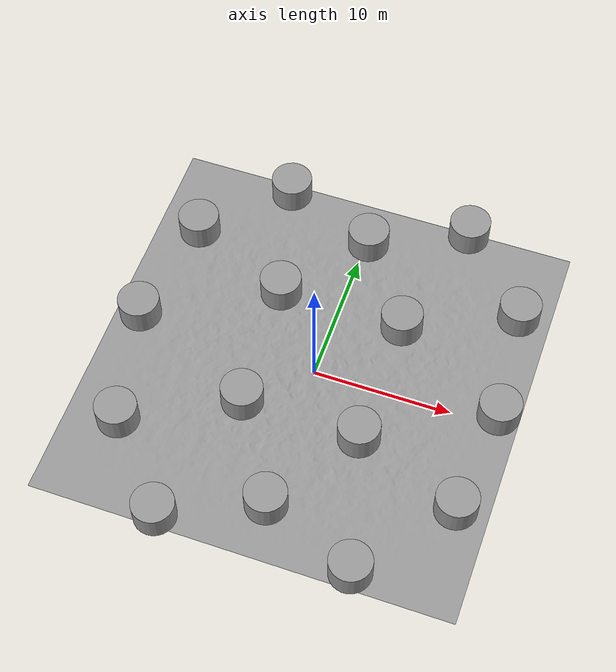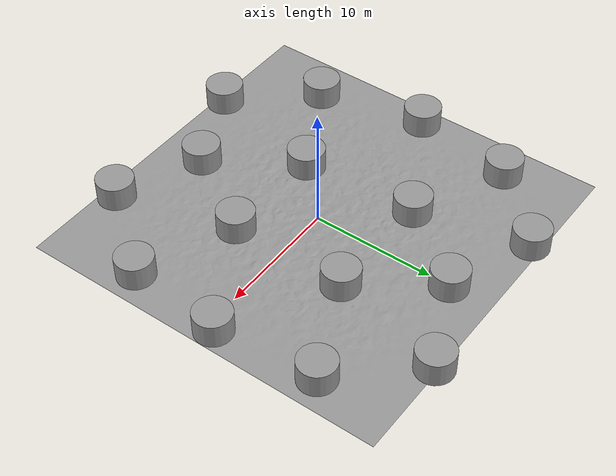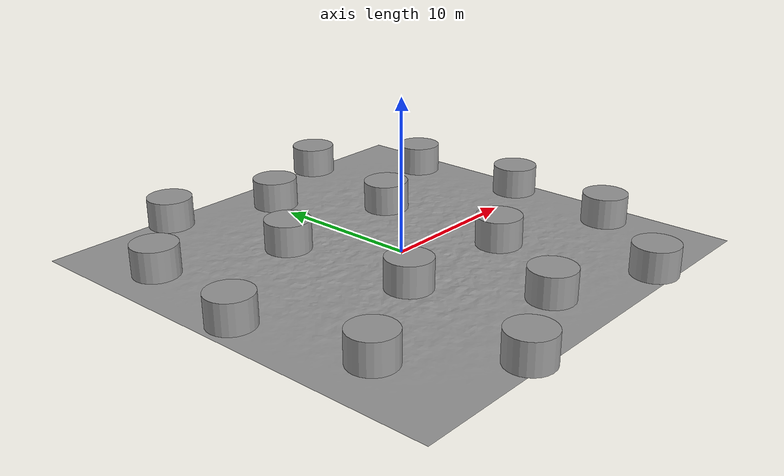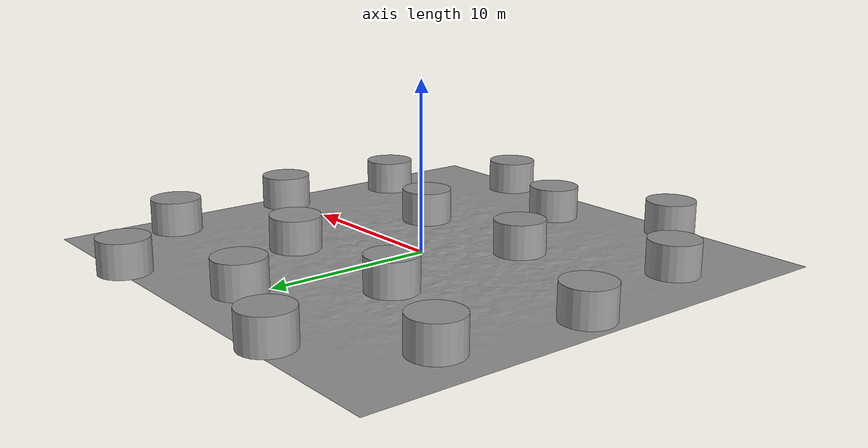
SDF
<sdf version="1.6">
 <world name="default">
  <light name="sun" type="directional">
   <pose>0 0 10 0 -0 0</pose>
   <diffuse>0.8 0.8 0.8 1</diffuse>
   <specular>0.2 0.2 0.2 1</specular>
   <attenuation>
    <range>1000</range>
    <constant>0.9</constant>
    <linear>0.01</linear>
    <quadratic>0.001</quadratic>
   </attenuation>
   <direction>-0.5 0.1 -0.9</direction>
  </light>
  <gravity>0 0 -9.8</gravity>
  <magnetic_field>6e-06 2.3e-05 -4.2e-05</magnetic_field>
  <atmosphere type="adiabatic"/>
  <physics name="default_physics" default="0" type="ode">
   <max_step_size>0.001</max_step_size>
   <real_time_factor>1</real_time_factor>
   <real_time_update_rate>1000</real_time_update_rate>
   <ode>
    <solver>
     <iters>1000</iters>
     <type>quick</type>
     <sor>1.3</sor>
     <use_dynamic_moi_rescaling>0</use_dynamic_moi_rescaling>
    </solver>
    <constraints>
     <cfm>0</cfm>
     <erp>0.2</erp>
     <contact_max_correcting_vel>100</contact_max_correcting_vel>
     <contact_surface_layer>0.001</contact_surface_layer>
    </constraints>
   </ode>
  </physics>
  <scene><ambient>0.4 0.4 0.4 1</ambient><background>0.7 0.7 0.7 1</background><shadows>1</shadows></scene>
  <audio><device>default</device></audio>
  <spherical_coordinates>
   <surface_model>EARTH_WGS84</surface_model>
   <latitude_deg>0</latitude_deg>
   <longitude_deg>0</longitude_deg>
   <elevation>0</elevation>
   <heading_deg>0</heading_deg>
  </spherical_coordinates>
  <model name="forest_ground">
   <link name="link_0">
    <inertial>
     <mass>1</mass>
     <inertia>
      <ixx>0.166667</ixx>
      <ixy>0</ixy>
      <ixz>0</ixz>
      <iyy>0.166667</iyy>
      <iyz>0</iyz>
      <izz>0.166667</izz>
     </inertia>
    </inertial>
    <pose>3e-06 -2e-06 0 0.216292 0.022741 0.004996</pose>
    <visual name="visual">
     <geometry>
      <mesh><uri>/root/catkin_ws/src/soma_pkg/soma_description/meshes/forest4.dae</uri><scale>1 1 1</scale></mesh>
     </geometry>
     <material>
      <lighting>1</lighting>
      <script><uri>file://media/materials/scripts/gazebo.material</uri><name>Gazebo/Grey</name></script>
     </material>
    </visual>
    <collision name="collision">
     <geometry>
      <mesh><uri>/root/catkin_ws/src/soma_pkg/soma_description/meshes/forest4.dae</uri><scale>1 1 1</scale></mesh>
     </geometry>
     <surface>
      <friction>
       <ode><mu>inf</mu><mu2>inf</mu2><fdir1>0 0 0</fdir1><slip1>0</slip1><slip2>0</slip2></ode>
       <torsional>
        <coefficient>1</coefficient>
        <patch_radius>0</patch_radius>
        <surface_radius>0</surface_radius>
        <use_patch_radius>1</use_patch_radius>
        <ode><slip>0</slip></ode>
       </torsional>
      </friction>
      <bounce><restitution_coefficient>0</restitution_coefficient><threshold>1e+100</threshold></bounce>
      <contact>
       <collide_without_contact>0</collide_without_contact>
       <collide_without_contact_bitmask>1</collide_without_contact_bitmask>
       <collide_bitmask>1</collide_bitmask>
       <ode>
        <soft_cfm>0</soft_cfm>
        <soft_erp>0.2</soft_erp>
        <kp>1e+07</kp>
        <kd>1</kd>
        <max_vel>0.01</max_vel>
        <min_depth>0</min_depth>
       </ode>
       <bullet>
        <split_impulse>1</split_impulse>
        <split_impulse_penetration_threshold>-0.01</split_impulse_penetration_threshold>
        <soft_cfm>0</soft_cfm>
        <soft_erp>0.2</soft_erp>
        <kp>1e+13</kp>
        <kd>1</kd>
       </bullet>
      </contact>
     </surface>
    </collision>
   </link>
   <static>1</static>
   <pose>-0.274212 0.201867 0.09374 -0.21706 -0.027407 -0.002531</pose>
  </model>
  <model name="Cylinder_tree">
   <link name="link_0">
    <inertial>
     <mass>1</mass>
     <inertia><ixx>0.145833</ixx><ixy>0</ixy><ixz>0</ixz><iyy>0.145833</iyy><iyz>0</iyz><izz>0.125</izz></inertia>
    </inertial>
    <visual name="visual">
     <pose>0 0 0.5 0 -0 0</pose>
     <geometry><cylinder><radius>1.5</radius><length>2</length></cylinder></geometry>
     <material>
      <lighting>1</lighting>
      <script><uri>file://media/materials/scripts/gazebo.material</uri><name>Gazebo/Grey</name></script>
      <shader type="vertex"><normal_map>__default__</normal_map></shader>
      <ambient>0.3 0.3 0.3 1</ambient>
      <diffuse>0.7 0.7 0.7 1</diffuse>
      <specular>0.01 0.01 0.01 1</specular>
      <emissive>0 0 0 1</emissive>
     </material>
    </visual>
    <collision name="collision">
     <pose>0 0 0.5 0 -0 0</pose>
     <geometry><cylinder><radius>1.5</radius><length>2</length></cylinder></geometry>
     <surface>
      <friction>
       <ode><mu>1</mu><mu2>1</mu2><fdir1>0 0 0</fdir1><slip1>0</slip1><slip2>0</slip2></ode>
       <torsional>
        <coefficient>1</coefficient>
        <patch_radius>0</patch_radius>
        <surface_radius>0</surface_radius>
        <use_patch_radius>1</use_patch_radius>
        <ode><slip>0</slip></ode>
       </torsional>
      </friction>
      <bounce><restitution_coefficient>0</restitution_coefficient><threshold>1e+06</threshold></bounce>
      <contact>
       <collide_without_contact>0</collide_without_contact>
       <collide_without_contact_bitmask>1</collide_without_contact_bitmask>
       <collide_bitmask>1</collide_bitmask>
       <ode>
        <soft_cfm>0</soft_cfm>
        <soft_erp>0.2</soft_erp>
        <kp>1e+13</kp>
        <kd>1</kd>
        <max_vel>0.01</max_vel>
        <min_depth>0</min_depth>
       </ode>
       <bullet>
        <split_impulse>1</split_impulse>
        <split_impulse_penetration_threshold>-0.01</split_impulse_penetration_threshold>
        <soft_cfm>0</soft_cfm>
        <soft_erp>0.2</soft_erp>
        <kp>1e+13</kp>
        <kd>1</kd>
       </bullet>
      </contact>
     </surface>
    </collision>
   </link>
   <static>0</static>
   <pose>-4.47194 5.5227 0.650348 -0.000442 -0.006293 -0.006346</pose>
  </model>
  <model name="Cylinder_tree_clone">
   <link name="link_0">
    <inertial>
     <mass>1</mass>
     <inertia><ixx>0.145833</ixx><ixy>0</ixy><ixz>0</ixz><iyy>0.145833</iyy><iyz>0</iyz><izz>0.125</izz></inertia>
    </inertial>
    <visual name="visual">
     <pose>0 0 0.5 0 -0 0</pose>
     <geometry><cylinder><radius>1.5</radius><length>2</length></cylinder></geometry>
     <material>
      <lighting>1</lighting>
      <script><uri>file://media/materials/scripts/gazebo.material</uri><name>Gazebo/Grey</name></script>
      <shader type="vertex"><normal_map>__default__</normal_map></shader>
      <ambient>0.3 0.3 0.3 1</ambient>
      <diffuse>0.7 0.7 0.7 1</diffuse>
      <specular>0.01 0.01 0.01 1</specular>
      <emissive>0 0 0 1</emissive>
     </material>
    </visual>
    <collision name="collision">
     <pose>0 0 0.5 0 -0 0</pose>
     <geometry><cylinder><radius>1.5</radius><length>2</length></cylinder></geometry>
     <surface>
      <friction>
       <ode><mu>1</mu><mu2>1</mu2><fdir1>0 0 0</fdir1><slip1>0</slip1><slip2>0</slip2></ode>
       <torsional>
        <coefficient>1</coefficient>
        <patch_radius>0</patch_radius>
        <surface_radius>0</surface_radius>
        <use_patch_radius>1</use_patch_radius>
        <ode><slip>0</slip></ode>
       </torsional>
      </friction>
      <bounce><restitution_coefficient>0</restitution_coefficient><threshold>1e+06</threshold></bounce>
      <contact>
       <collide_without_contact>0</collide_without_contact>
       <collide_without_contact_bitmask>1</collide_without_contact_bitmask>
       <collide_bitmask>1</collide_bitmask>
       <ode>
        <soft_cfm>0</soft_cfm>
        <soft_erp>0.2</soft_erp>
        <kp>1e+13</kp>
        <kd>1</kd>
        <max_vel>0.01</max_vel>
        <min_depth>0</min_depth>
       </ode>
       <bullet>
        <split_impulse>1</split_impulse>
        <split_impulse_penetration_threshold>-0.01</split_impulse_penetration_threshold>
        <soft_cfm>0</soft_cfm>
        <soft_erp>0.2</soft_erp>
        <kp>1e+13</kp>
        <kd>1</kd>
       </bullet>
      </contact>
     </surface>
    </collision>
   </link>
   <static>0</static>
   <pose>4.73932 5.45658 0.690154 -0.005934 -0.025362 0.002708</pose>
  </model>
  <model name="Cylinder_tree_clone_0">
   <link name="link_0">
    <inertial>
     <mass>1</mass>
     <inertia><ixx>0.145833</ixx><ixy>0</ixy><ixz>0</ixz><iyy>0.145833</iyy><iyz>0</iyz><izz>0.125</izz></inertia>
    </inertial>
    <visual name="visual">
     <pose>0 0 0.5 0 -0 0</pose>
     <geometry><cylinder><radius>1.5</radius><length>2</length></cylinder></geometry>
     <material>
      <lighting>1</lighting>
      <script><uri>file://media/materials/scripts/gazebo.material</uri><name>Gazebo/Grey</name></script>
      <shader type="vertex"><normal_map>__default__</normal_map></shader>
      <ambient>0.3 0.3 0.3 1</ambient>
      <diffuse>0.7 0.7 0.7 1</diffuse>
      <specular>0.01 0.01 0.01 1</specular>
      <emissive>0 0 0 1</emissive>
     </material>
    </visual>
    <collision name="collision">
     <pose>0 0 0.5 0 -0 0</pose>
     <geometry><cylinder><radius>1.5</radius><length>2</length></cylinder></geometry>
     <surface>
      <friction>
       <ode><mu>1</mu><mu2>1</mu2><fdir1>0 0 0</fdir1><slip1>0</slip1><slip2>0</slip2></ode>
       <torsional>
        <coefficient>1</coefficient>
        <patch_radius>0</patch_radius>
        <surface_radius>0</surface_radius>
        <use_patch_radius>1</use_patch_radius>
        <ode><slip>0</slip></ode>
       </torsional>
      </friction>
      <bounce><restitution_coefficient>0</restitution_coefficient><threshold>1e+06</threshold></bounce>
      <contact>
       <collide_without_contact>0</collide_without_contact>
       <collide_without_contact_bitmask>1</collide_without_contact_bitmask>
       <collide_bitmask>1</collide_bitmask>
       <ode>
        <soft_cfm>0</soft_cfm>
        <soft_erp>0.2</soft_erp>
        <kp>1e+13</kp>
        <kd>1</kd>
        <max_vel>0.01</max_vel>
        <min_depth>0</min_depth>
       </ode>
       <bullet>
        <split_impulse>1</split_impulse>
        <split_impulse_penetration_threshold>-0.01</split_impulse_penetration_threshold>
        <soft_cfm>0</soft_cfm>
        <soft_erp>0.2</soft_erp>
        <kp>1e+13</kp>
        <kd>1</kd>
       </bullet>
      </contact>
     </surface>
    </collision>
   </link>
   <static>0</static>
   <pose>12.4496 9.00782 0.648892 -0.004476 0.001208 -0.000231</pose>
  </model>
  <model name="Cylinder_tree_clone_1">
   <link name="link_0">
    <inertial>
     <mass>1</mass>
     <inertia><ixx>0.145833</ixx><ixy>0</ixy><ixz>0</ixz><iyy>0.145833</iyy><iyz>0</iyz><izz>0.125</izz></inertia>
    </inertial>
    <visual name="visual">
     <pose>0 0 0.5 0 -0 0</pose>
     <geometry><cylinder><radius>1.5</radius><length>2</length></cylinder></geometry>
     <material>
      <lighting>1</lighting>
      <script><uri>file://media/materials/scripts/gazebo.material</uri><name>Gazebo/Grey</name></script>
      <shader type="vertex"><normal_map>__default__</normal_map></shader>
      <ambient>0.3 0.3 0.3 1</ambient>
      <diffuse>0.7 0.7 0.7 1</diffuse>
      <specular>0.01 0.01 0.01 1</specular>
      <emissive>0 0 0 1</emissive>
     </material>
    </visual>
    <collision name="collision">
     <pose>0 0 0.5 0 -0 0</pose>
     <geometry><cylinder><radius>1.5</radius><length>2</length></cylinder></geometry>
     <surface>
      <friction>
       <ode><mu>1</mu><mu2>1</mu2><fdir1>0 0 0</fdir1><slip1>0</slip1><slip2>0</slip2></ode>
       <torsional>
        <coefficient>1</coefficient>
        <patch_radius>0</patch_radius>
        <surface_radius>0</surface_radius>
        <use_patch_radius>1</use_patch_radius>
        <ode><slip>0</slip></ode>
       </torsional>
      </friction>
      <bounce><restitution_coefficient>0</restitution_coefficient><threshold>1e+06</threshold></bounce>
      <contact>
       <collide_without_contact>0</collide_without_contact>
       <collide_without_contact_bitmask>1</collide_without_contact_bitmask>
       <collide_bitmask>1</collide_bitmask>
       <ode>
        <soft_cfm>0</soft_cfm>
        <soft_erp>0.2</soft_erp>
        <kp>1e+13</kp>
        <kd>1</kd>
        <max_vel>0.01</max_vel>
        <min_depth>0</min_depth>
       </ode>
       <bullet>
        <split_impulse>1</split_impulse>
        <split_impulse_penetration_threshold>-0.01</split_impulse_penetration_threshold>
        <soft_cfm>0</soft_cfm>
        <soft_erp>0.2</soft_erp>
        <kp>1e+13</kp>
        <kd>1</kd>
       </bullet>
      </contact>
     </surface>
    </collision>
   </link>
   <static>0</static>
   <pose>7.04601 14.8766 0.612871 -0.004569 -0.004014 0.021683</pose>
  </model>
  <model name="Cylinder_tree_clone_2">
   <link name="link_0">
    <inertial>
     <mass>1</mass>
     <inertia><ixx>0.145833</ixx><ixy>0</ixy><ixz>0</ixz><iyy>0.145833</iyy><iyz>0</iyz><izz>0.125</izz></inertia>
    </inertial>
    <visual name="visual">
     <pose>0 0 0.5 0 -0 0</pose>
     <geometry><cylinder><radius>1.5</radius><length>2</length></cylinder></geometry>
     <material>
      <lighting>1</lighting>
      <script><uri>file://media/materials/scripts/gazebo.material</uri><name>Gazebo/Grey</name></script>
      <shader type="vertex"><normal_map>__default__</normal_map></shader>
      <ambient>0.3 0.3 0.3 1</ambient>
      <diffuse>0.7 0.7 0.7 1</diffuse>
      <specular>0.01 0.01 0.01 1</specular>
      <emissive>0 0 0 1</emissive>
     </material>
    </visual>
    <collision name="collision">
     <pose>0 0 0.5 0 -0 0</pose>
     <geometry><cylinder><radius>1.5</radius><length>2</length></cylinder></geometry>
     <surface>
      <friction>
       <ode><mu>1</mu><mu2>1</mu2><fdir1>0 0 0</fdir1><slip1>0</slip1><slip2>0</slip2></ode>
       <torsional>
        <coefficient>1</coefficient>
        <patch_radius>0</patch_radius>
        <surface_radius>0</surface_radius>
        <use_patch_radius>1</use_patch_radius>
        <ode><slip>0</slip></ode>
       </torsional>
      </friction>
      <bounce><restitution_coefficient>0</restitution_coefficient><threshold>1e+06</threshold></bounce>
      <contact>
       <collide_without_contact>0</collide_without_contact>
       <collide_without_contact_bitmask>1</collide_without_contact_bitmask>
       <collide_bitmask>1</collide_bitmask>
       <ode>
        <soft_cfm>0</soft_cfm>
        <soft_erp>0.2</soft_erp>
        <kp>1e+13</kp>
        <kd>1</kd>
        <max_vel>0.01</max_vel>
        <min_depth>0</min_depth>
       </ode>
       <bullet>
        <split_impulse>1</split_impulse>
        <split_impulse_penetration_threshold>-0.01</split_impulse_penetration_threshold>
        <soft_cfm>0</soft_cfm>
        <soft_erp>0.2</soft_erp>
        <kp>1e+13</kp>
        <kd>1</kd>
       </bullet>
      </contact>
     </surface>
    </collision>
   </link>
   <static>0</static>
   <pose>-6.77093 14.3703 0.559174 -0.005468 -0.0041 0.001919</pose>
  </model>
  <model name="Cylinder_tree_clone_3">
   <link name="link_0">
    <inertial>
     <mass>1</mass>
     <inertia><ixx>0.145833</ixx><ixy>0</ixy><ixz>0</ixz><iyy>0.145833</iyy><iyz>0</iyz><izz>0.125</izz></inertia>
    </inertial>
    <visual name="visual">
     <pose>0 0 0.5 0 -0 0</pose>
     <geometry><cylinder><radius>1.5</radius><length>2</length></cylinder></geometry>
     <material>
      <lighting>1</lighting>
      <script><uri>file://media/materials/scripts/gazebo.material</uri><name>Gazebo/Grey</name></script>
      <shader type="vertex"><normal_map>__default__</normal_map></shader>
      <ambient>0.3 0.3 0.3 1</ambient>
      <diffuse>0.7 0.7 0.7 1</diffuse>
      <specular>0.01 0.01 0.01 1</specular>
      <emissive>0 0 0 1</emissive>
     </material>
    </visual>
    <collision name="collision">
     <pose>0 0 0.5 0 -0 0</pose>
     <geometry><cylinder><radius>1.5</radius><length>2</length></cylinder></geometry>
     <surface>
      <friction>
       <ode><mu>1</mu><mu2>1</mu2><fdir1>0 0 0</fdir1><slip1>0</slip1><slip2>0</slip2></ode>
       <torsional>
        <coefficient>1</coefficient>
        <patch_radius>0</patch_radius>
        <surface_radius>0</surface_radius>
        <use_patch_radius>1</use_patch_radius>
        <ode><slip>0</slip></ode>
       </torsional>
      </friction>
      <bounce><restitution_coefficient>0</restitution_coefficient><threshold>1e+06</threshold></bounce>
      <contact>
       <collide_without_contact>0</collide_without_contact>
       <collide_without_contact_bitmask>1</collide_without_contact_bitmask>
       <collide_bitmask>1</collide_bitmask>
       <ode>
        <soft_cfm>0</soft_cfm>
        <soft_erp>0.2</soft_erp>
        <kp>1e+13</kp>
        <kd>1</kd>
        <max_vel>0.01</max_vel>
        <min_depth>0</min_depth>
       </ode>
       <bullet>
        <split_impulse>1</split_impulse>
        <split_impulse_penetration_threshold>-0.01</split_impulse_penetration_threshold>
        <soft_cfm>0</soft_cfm>
        <soft_erp>0.2</soft_erp>
        <kp>1e+13</kp>
        <kd>1</kd>
       </bullet>
      </contact>
     </surface>
    </collision>
   </link>
   <static>0</static>
   <pose>-13.4763 0.534592 0.554169 -0.000503 -0.014114 0.00055</pose>
  </model>
  <model name="Cylinder_tree_clone_4">
   <link name="link_0">
    <inertial>
     <mass>1</mass>
     <inertia><ixx>0.145833</ixx><ixy>0</ixy><ixz>0</ixz><iyy>0.145833</iyy><iyz>0</iyz><izz>0.125</izz></inertia>
    </inertial>
    <visual name="visual">
     <pose>0 0 0.5 0 -0 0</pose>
     <geometry><cylinder><radius>1.5</radius><length>2</length></cylinder></geometry>
     <material>
      <lighting>1</lighting>
      <script><uri>file://media/materials/scripts/gazebo.material</uri><name>Gazebo/Grey</name></script>
      <shader type="vertex"><normal_map>__default__</normal_map></shader>
      <ambient>0.3 0.3 0.3 1</ambient>
      <diffuse>0.7 0.7 0.7 1</diffuse>
      <specular>0.01 0.01 0.01 1</specular>
      <emissive>0 0 0 1</emissive>
     </material>
    </visual>
    <collision name="collision">
     <pose>0 0 0.5 0 -0 0</pose>
     <geometry><cylinder><radius>1.5</radius><length>2</length></cylinder></geometry>
     <surface>
      <friction>
       <ode><mu>1</mu><mu2>1</mu2><fdir1>0 0 0</fdir1><slip1>0</slip1><slip2>0</slip2></ode>
       <torsional>
        <coefficient>1</coefficient>
        <patch_radius>0</patch_radius>
        <surface_radius>0</surface_radius>
        <use_patch_radius>1</use_patch_radius>
        <ode><slip>0</slip></ode>
       </torsional>
      </friction>
      <bounce><restitution_coefficient>0</restitution_coefficient><threshold>1e+06</threshold></bounce>
      <contact>
       <collide_without_contact>0</collide_without_contact>
       <collide_without_contact_bitmask>1</collide_without_contact_bitmask>
       <collide_bitmask>1</collide_bitmask>
       <ode>
        <soft_cfm>0</soft_cfm>
        <soft_erp>0.2</soft_erp>
        <kp>1e+13</kp>
        <kd>1</kd>
        <max_vel>0.01</max_vel>
        <min_depth>0</min_depth>
       </ode>
       <bullet>
        <split_impulse>1</split_impulse>
        <split_impulse_penetration_threshold>-0.01</split_impulse_penetration_threshold>
        <soft_cfm>0</soft_cfm>
        <soft_erp>0.2</soft_erp>
        <kp>1e+13</kp>
        <kd>1</kd>
       </bullet>
      </contact>
     </surface>
    </collision>
   </link>
   <static>0</static>
   <pose>-12.1358 8.86831 0.555119 -0.002576 -0.013255 0.000556</pose>
  </model>
  <model name="Cylinder_tree_clone_5">
   <link name="link_0">
    <inertial>
     <mass>1</mass>
     <inertia><ixx>0.145833</ixx><ixy>0</ixy><ixz>0</ixz><iyy>0.145833</iyy><iyz>0</iyz><izz>0.125</izz></inertia>
    </inertial>
    <visual name="visual">
     <pose>0 0 0.5 0 -0 0</pose>
     <geometry><cylinder><radius>1.5</radius><length>2</length></cylinder></geometry>
     <material>
      <lighting>1</lighting>
      <script><uri>file://media/materials/scripts/gazebo.material</uri><name>Gazebo/Grey</name></script>
      <shader type="vertex"><normal_map>__default__</normal_map></shader>
      <ambient>0.3 0.3 0.3 1</ambient>
      <diffuse>0.7 0.7 0.7 1</diffuse>
      <specular>0.01 0.01 0.01 1</specular>
      <emissive>0 0 0 1</emissive>
     </material>
    </visual>
    <collision name="collision">
     <pose>0 0 0.5 0 -0 0</pose>
     <geometry><cylinder><radius>1.5</radius><length>2</length></cylinder></geometry>
     <surface>
      <friction>
       <ode><mu>1</mu><mu2>1</mu2><fdir1>0 0 0</fdir1><slip1>0</slip1><slip2>0</slip2></ode>
       <torsional>
        <coefficient>1</coefficient>
        <patch_radius>0</patch_radius>
        <surface_radius>0</surface_radius>
        <use_patch_radius>1</use_patch_radius>
        <ode><slip>0</slip></ode>
       </torsional>
      </friction>
      <bounce><restitution_coefficient>0</restitution_coefficient><threshold>1e+06</threshold></bounce>
      <contact>
       <collide_without_contact>0</collide_without_contact>
       <collide_without_contact_bitmask>1</collide_without_contact_bitmask>
       <collide_bitmask>1</collide_bitmask>
       <ode>
        <soft_cfm>0</soft_cfm>
        <soft_erp>0.2</soft_erp>
        <kp>1e+13</kp>
        <kd>1</kd>
        <max_vel>0.01</max_vel>
        <min_depth>0</min_depth>
       </ode>
       <bullet>
        <split_impulse>1</split_impulse>
        <split_impulse_penetration_threshold>-0.01</split_impulse_penetration_threshold>
        <soft_cfm>0</soft_cfm>
        <soft_erp>0.2</soft_erp>
        <kp>1e+13</kp>
        <kd>1</kd>
       </bullet>
      </contact>
     </surface>
    </collision>
   </link>
   <static>0</static>
   <pose>-3.93029 -3.9595 0.676636 -0.002772 0.010347 -0.044946</pose>
  </model>
  <model name="Cylinder_tree_clone_6">
   <link name="link_0">
    <inertial>
     <mass>1</mass>
     <inertia><ixx>0.145833</ixx><ixy>0</ixy><ixz>0</ixz><iyy>0.145833</iyy><iyz>0</iyz><izz>0.125</izz></inertia>
    </inertial>
    <visual name="visual">
     <pose>0 0 0.5 0 -0 0</pose>
     <geometry><cylinder><radius>1.5</radius><length>2</length></cylinder></geometry>
     <material>
      <lighting>1</lighting>
      <script><uri>file://media/materials/scripts/gazebo.material</uri><name>Gazebo/Grey</name></script>
      <shader type="vertex"><normal_map>__default__</normal_map></shader>
      <ambient>0.3 0.3 0.3 1</ambient>
      <diffuse>0.7 0.7 0.7 1</diffuse>
      <specular>0.01 0.01 0.01 1</specular>
      <emissive>0 0 0 1</emissive>
     </material>
    </visual>
    <collision name="collision">
     <pose>0 0 0.5 0 -0 0</pose>
     <geometry><cylinder><radius>1.5</radius><length>2</length></cylinder></geometry>
     <surface>
      <friction>
       <ode><mu>1</mu><mu2>1</mu2><fdir1>0 0 0</fdir1><slip1>0</slip1><slip2>0</slip2></ode>
       <torsional>
        <coefficient>1</coefficient>
        <patch_radius>0</patch_radius>
        <surface_radius>0</surface_radius>
        <use_patch_radius>1</use_patch_radius>
        <ode><slip>0</slip></ode>
       </torsional>
      </friction>
      <bounce><restitution_coefficient>0</restitution_coefficient><threshold>1e+06</threshold></bounce>
      <contact>
       <collide_without_contact>0</collide_without_contact>
       <collide_without_contact_bitmask>1</collide_without_contact_bitmask>
       <collide_bitmask>1</collide_bitmask>
       <ode>
        <soft_cfm>0</soft_cfm>
        <soft_erp>0.2</soft_erp>
        <kp>1e+13</kp>
        <kd>1</kd>
        <max_vel>0.01</max_vel>
        <min_depth>0</min_depth>
       </ode>
       <bullet>
        <split_impulse>1</split_impulse>
        <split_impulse_penetration_threshold>-0.01</split_impulse_penetration_threshold>
        <soft_cfm>0</soft_cfm>
        <soft_erp>0.2</soft_erp>
        <kp>1e+13</kp>
        <kd>1</kd>
       </bullet>
      </contact>
     </surface>
    </collision>
   </link>
   <static>0</static>
   <pose>0.3726 -10.8905 0.640273 0.009943 -0.003379 0.001814</pose>
  </model>
  <model name="Cylinder_tree_clone_7">
   <link name="link_0">
    <inertial>
     <mass>1</mass>
     <inertia><ixx>0.145833</ixx><ixy>0</ixy><ixz>0</ixz><iyy>0.145833</iyy><iyz>0</iyz><izz>0.125</izz></inertia>
    </inertial>
    <visual name="visual">
     <pose>0 0 0.5 0 -0 0</pose>
     <geometry><cylinder><radius>1.5</radius><length>2</length></cylinder></geometry>
     <material>
      <lighting>1</lighting>
      <script><uri>file://media/materials/scripts/gazebo.material</uri><name>Gazebo/Grey</name></script>
      <shader type="vertex"><normal_map>__default__</normal_map></shader>
      <ambient>0.3 0.3 0.3 1</ambient>
      <diffuse>0.7 0.7 0.7 1</diffuse>
      <specular>0.01 0.01 0.01 1</specular>
      <emissive>0 0 0 1</emissive>
     </material>
    </visual>
    <collision name="collision">
     <pose>0 0 0.5 0 -0 0</pose>
     <geometry><cylinder><radius>1.5</radius><length>2</length></cylinder></geometry>
     <surface>
      <friction>
       <ode><mu>1</mu><mu2>1</mu2><fdir1>0 0 0</fdir1><slip1>0</slip1><slip2>0</slip2></ode>
       <torsional>
        <coefficient>1</coefficient>
        <patch_radius>0</patch_radius>
        <surface_radius>0</surface_radius>
        <use_patch_radius>1</use_patch_radius>
        <ode><slip>0</slip></ode>
       </torsional>
      </friction>
      <bounce><restitution_coefficient>0</restitution_coefficient><threshold>1e+06</threshold></bounce>
      <contact>
       <collide_without_contact>0</collide_without_contact>
       <collide_without_contact_bitmask>1</collide_without_contact_bitmask>
       <collide_bitmask>1</collide_bitmask>
       <ode>
        <soft_cfm>0</soft_cfm>
        <soft_erp>0.2</soft_erp>
        <kp>1e+13</kp>
        <kd>1</kd>
        <max_vel>0.01</max_vel>
        <min_depth>0</min_depth>
       </ode>
       <bullet>
        <split_impulse>1</split_impulse>
        <split_impulse_penetration_threshold>-0.01</split_impulse_penetration_threshold>
        <soft_cfm>0</soft_cfm>
        <soft_erp>0.2</soft_erp>
        <kp>1e+13</kp>
        <kd>1</kd>
       </bullet>
      </contact>
     </surface>
    </collision>
   </link>
   <static>0</static>
   <pose>4.65707 -4.11129 0.685924 -0.00198 -0.009855 0.036441</pose>
  </model>
  <model name="Cylinder_tree_clone_8">
   <link name="link_0">
    <inertial>
     <mass>1</mass>
     <inertia><ixx>0.145833</ixx><ixy>0</ixy><ixz>0</ixz><iyy>0.145833</iyy><iyz>0</iyz><izz>0.125</izz></inertia>
    </inertial>
    <visual name="visual">
     <pose>0 0 0.5 0 -0 0</pose>
     <geometry><cylinder><radius>1.5</radius><length>2</length></cylinder></geometry>
     <material>
      <lighting>1</lighting>
      <script><uri>file://media/materials/scripts/gazebo.material</uri><name>Gazebo/Grey</name></script>
      <shader type="vertex"><normal_map>__default__</normal_map></shader>
      <ambient>0.3 0.3 0.3 1</ambient>
      <diffuse>0.7 0.7 0.7 1</diffuse>
      <specular>0.01 0.01 0.01 1</specular>
      <emissive>0 0 0 1</emissive>
     </material>
    </visual>
    <collision name="collision">
     <pose>0 0 0.5 0 -0 0</pose>
     <geometry><cylinder><radius>1.5</radius><length>2</length></cylinder></geometry>
     <surface>
      <friction>
       <ode><mu>1</mu><mu2>1</mu2><fdir1>0 0 0</fdir1><slip1>0</slip1><slip2>0</slip2></ode>
       <torsional>
        <coefficient>1</coefficient>
        <patch_radius>0</patch_radius>
        <surface_radius>0</surface_radius>
        <use_patch_radius>1</use_patch_radius>
        <ode><slip>0</slip></ode>
       </torsional>
      </friction>
      <bounce><restitution_coefficient>0</restitution_coefficient><threshold>1e+06</threshold></bounce>
      <contact>
       <collide_without_contact>0</collide_without_contact>
       <collide_without_contact_bitmask>1</collide_without_contact_bitmask>
       <collide_bitmask>1</collide_bitmask>
       <ode>
        <soft_cfm>0</soft_cfm>
        <soft_erp>0.2</soft_erp>
        <kp>1e+13</kp>
        <kd>1</kd>
        <max_vel>0.01</max_vel>
        <min_depth>0</min_depth>
       </ode>
       <bullet>
        <split_impulse>1</split_impulse>
        <split_impulse_penetration_threshold>-0.01</split_impulse_penetration_threshold>
        <soft_cfm>0</soft_cfm>
        <soft_erp>0.2</soft_erp>
        <kp>1e+13</kp>
        <kd>1</kd>
       </bullet>
      </contact>
     </surface>
    </collision>
   </link>
   <static>0</static>
   <pose>13.2386 0.73629 0.659923 0.001277 0.002832 0.008653</pose>
  </model>
  <model name="Cylinder_tree_clone_9">
   <link name="link_0">
    <inertial>
     <mass>1</mass>
     <inertia><ixx>0.145833</ixx><ixy>0</ixy><ixz>0</ixz><iyy>0.145833</iyy><iyz>0</iyz><izz>0.125</izz></inertia>
    </inertial>
    <visual name="visual">
     <pose>0 0 0.5 0 -0 0</pose>
     <geometry><cylinder><radius>1.5</radius><length>2</length></cylinder></geometry>
     <material>
      <lighting>1</lighting>
      <script><uri>file://media/materials/scripts/gazebo.material</uri><name>Gazebo/Grey</name></script>
      <shader type="vertex"><normal_map>__default__</normal_map></shader>
      <ambient>0.3 0.3 0.3 1</ambient>
      <diffuse>0.7 0.7 0.7 1</diffuse>
      <specular>0.01 0.01 0.01 1</specular>
      <emissive>0 0 0 1</emissive>
     </material>
    </visual>
    <collision name="collision">
     <pose>0 0 0.5 0 -0 0</pose>
     <geometry><cylinder><radius>1.5</radius><length>2</length></cylinder></geometry>
     <surface>
      <friction>
       <ode><mu>1</mu><mu2>1</mu2><fdir1>0 0 0</fdir1><slip1>0</slip1><slip2>0</slip2></ode>
       <torsional>
        <coefficient>1</coefficient>
        <patch_radius>0</patch_radius>
        <surface_radius>0</surface_radius>
        <use_patch_radius>1</use_patch_radius>
        <ode><slip>0</slip></ode>
       </torsional>
      </friction>
      <bounce><restitution_coefficient>0</restitution_coefficient><threshold>1e+06</threshold></bounce>
      <contact>
       <collide_without_contact>0</collide_without_contact>
       <collide_without_contact_bitmask>1</collide_without_contact_bitmask>
       <collide_bitmask>1</collide_bitmask>
       <ode>
        <soft_cfm>0</soft_cfm>
        <soft_erp>0.2</soft_erp>
        <kp>1e+13</kp>
        <kd>1</kd>
        <max_vel>0.01</max_vel>
        <min_depth>0</min_depth>
       </ode>
       <bullet>
        <split_impulse>1</split_impulse>
        <split_impulse_penetration_threshold>-0.01</split_impulse_penetration_threshold>
        <soft_cfm>0</soft_cfm>
        <soft_erp>0.2</soft_erp>
        <kp>1e+13</kp>
        <kd>1</kd>
       </bullet>
      </contact>
     </surface>
    </collision>
   </link>
   <static>0</static>
   <pose>-11.5802 -8.05986 0.574744 0.003699 -0.006654 0.013713</pose>
  </model>
  <model name="Cylinder_tree_clone_10">
   <link name="link_0">
    <inertial>
     <mass>1</mass>
     <inertia><ixx>0.145833</ixx><ixy>0</ixy><ixz>0</ixz><iyy>0.145833</iyy><iyz>0</iyz><izz>0.125</izz></inertia>
    </inertial>
    <visual name="visual">
     <pose>0 0 0.5 0 -0 0</pose>
     <geometry><cylinder><radius>1.5</radius><length>2</length></cylinder></geometry>
     <material>
      <lighting>1</lighting>
      <script><uri>file://media/materials/scripts/gazebo.material</uri><name>Gazebo/Grey</name></script>
      <shader type="vertex"><normal_map>__default__</normal_map></shader>
      <ambient>0.3 0.3 0.3 1</ambient>
      <diffuse>0.7 0.7 0.7 1</diffuse>
      <specular>0.01 0.01 0.01 1</specular>
      <emissive>0 0 0 1</emissive>
     </material>
    </visual>
    <collision name="collision">
     <pose>0 0 0.5 0 -0 0</pose>
     <geometry><cylinder><radius>1.5</radius><length>2</length></cylinder></geometry>
     <surface>
      <friction>
       <ode><mu>1</mu><mu2>1</mu2><fdir1>0 0 0</fdir1><slip1>0</slip1><slip2>0</slip2></ode>
       <torsional>
        <coefficient>1</coefficient>
        <patch_radius>0</patch_radius>
        <surface_radius>0</surface_radius>
        <use_patch_radius>1</use_patch_radius>
        <ode><slip>0</slip></ode>
       </torsional>
      </friction>
      <bounce><restitution_coefficient>0</restitution_coefficient><threshold>1e+06</threshold></bounce>
      <contact>
       <collide_without_contact>0</collide_without_contact>
       <collide_without_contact_bitmask>1</collide_without_contact_bitmask>
       <collide_bitmask>1</collide_bitmask>
       <ode>
        <soft_cfm>0</soft_cfm>
        <soft_erp>0.2</soft_erp>
        <kp>1e+13</kp>
        <kd>1</kd>
        <max_vel>0.01</max_vel>
        <min_depth>0</min_depth>
       </ode>
       <bullet>
        <split_impulse>1</split_impulse>
        <split_impulse_penetration_threshold>-0.01</split_impulse_penetration_threshold>
        <soft_cfm>0</soft_cfm>
        <soft_erp>0.2</soft_erp>
        <kp>1e+13</kp>
        <kd>1</kd>
       </bullet>
      </contact>
     </surface>
    </collision>
   </link>
   <static>0</static>
   <pose>-6.37125 -14.0331 0.584358 0.004258 -0.004003 -0.031359</pose>
  </model>
  <model name="Cylinder_tree_clone_11">
   <link name="link_0">
    <inertial>
     <mass>1</mass>
     <inertia><ixx>0.145833</ixx><ixy>0</ixy><ixz>0</ixz><iyy>0.145833</iyy><iyz>0</iyz><izz>0.125</izz></inertia>
    </inertial>
    <visual name="visual">
     <pose>0 0 0.5 0 -0 0</pose>
     <geometry><cylinder><radius>1.5</radius><length>2</length></cylinder></geometry>
     <material>
      <lighting>1</lighting>
      <script><uri>file://media/materials/scripts/gazebo.material</uri><name>Gazebo/Grey</name></script>
      <shader type="vertex"><normal_map>__default__</normal_map></shader>
      <ambient>0.3 0.3 0.3 1</ambient>
      <diffuse>0.7 0.7 0.7 1</diffuse>
      <specular>0.01 0.01 0.01 1</specular>
      <emissive>0 0 0 1</emissive>
     </material>
    </visual>
    <collision name="collision">
     <pose>0 0 0.5 0 -0 0</pose>
     <geometry><cylinder><radius>1.5</radius><length>2</length></cylinder></geometry>
     <surface>
      <friction>
       <ode><mu>1</mu><mu2>1</mu2><fdir1>0 0 0</fdir1><slip1>0</slip1><slip2>0</slip2></ode>
       <torsional>
        <coefficient>1</coefficient>
        <patch_radius>0</patch_radius>
        <surface_radius>0</surface_radius>
        <use_patch_radius>1</use_patch_radius>
        <ode><slip>0</slip></ode>
       </torsional>
      </friction>
      <bounce><restitution_coefficient>0</restitution_coefficient><threshold>1e+06</threshold></bounce>
      <contact>
       <collide_without_contact>0</collide_without_contact>
       <collide_without_contact_bitmask>1</collide_without_contact_bitmask>
       <collide_bitmask>1</collide_bitmask>
       <ode>
        <soft_cfm>0</soft_cfm>
        <soft_erp>0.2</soft_erp>
        <kp>1e+13</kp>
        <kd>1</kd>
        <max_vel>0.01</max_vel>
        <min_depth>0</min_depth>
       </ode>
       <bullet>
        <split_impulse>1</split_impulse>
        <split_impulse_penetration_threshold>-0.01</split_impulse_penetration_threshold>
        <soft_cfm>0</soft_cfm>
        <soft_erp>0.2</soft_erp>
        <kp>1e+13</kp>
        <kd>1</kd>
       </bullet>
      </contact>
     </surface>
    </collision>
   </link>
   <static>0</static>
   <pose>7.22242 -13.6761 0.640883 0.003308 -0.004 -0.040845</pose>
  </model>
  <model name="Cylinder_tree_clone_13">
   <link name="link_0">
    <inertial>
     <mass>1</mass>
     <inertia><ixx>0.145833</ixx><ixy>0</ixy><ixz>0</ixz><iyy>0.145833</iyy><iyz>0</iyz><izz>0.125</izz></inertia>
    </inertial>
    <visual name="visual">
     <pose>0 0 0.5 0 -0 0</pose>
     <geometry><cylinder><radius>1.5</radius><length>2</length></cylinder></geometry>
     <material>
      <lighting>1</lighting>
      <script><uri>file://media/materials/scripts/gazebo.material</uri><name>Gazebo/Grey</name></script>
      <shader type="vertex"><normal_map>__default__</normal_map></shader>
      <ambient>0.3 0.3 0.3 1</ambient>
      <diffuse>0.7 0.7 0.7 1</diffuse>
      <specular>0.01 0.01 0.01 1</specular>
      <emissive>0 0 0 1</emissive>
     </material>
    </visual>
    <collision name="collision">
     <pose>0 0 0.5 0 -0 0</pose>
     <geometry><cylinder><radius>1.5</radius><length>2</length></cylinder></geometry>
     <surface>
      <friction>
       <ode><mu>1</mu><mu2>1</mu2><fdir1>0 0 0</fdir1><slip1>0</slip1><slip2>0</slip2></ode>
       <torsional>
        <coefficient>1</coefficient>
        <patch_radius>0</patch_radius>
        <surface_radius>0</surface_radius>
        <use_patch_radius>1</use_patch_radius>
        <ode><slip>0</slip></ode>
       </torsional>
      </friction>
      <bounce><restitution_coefficient>0</restitution_coefficient><threshold>1e+06</threshold></bounce>
      <contact>
       <collide_without_contact>0</collide_without_contact>
       <collide_without_contact_bitmask>1</collide_without_contact_bitmask>
       <collide_bitmask>1</collide_bitmask>
       <ode>
        <soft_cfm>0</soft_cfm>
        <soft_erp>0.2</soft_erp>
        <kp>1e+13</kp>
        <kd>1</kd>
        <max_vel>0.01</max_vel>
        <min_depth>0</min_depth>
       </ode>
       <bullet>
        <split_impulse>1</split_impulse>
        <split_impulse_penetration_threshold>-0.01</split_impulse_penetration_threshold>
        <soft_cfm>0</soft_cfm>
        <soft_erp>0.2</soft_erp>
        <kp>1e+13</kp>
        <kd>1</kd>
       </bullet>
      </contact>
     </surface>
    </collision>
   </link>
   <static>0</static>
   <pose>12.4447 -7.09868 0.66646 0.003293 0.003662 0.031455</pose>
  </model>
  <model name="Cylinder_tree_clone_14">
   <link name="link_0">
    <inertial>
     <mass>1</mass>
     <inertia><ixx>0.145833</ixx><ixy>0</ixy><ixz>0</ixz><iyy>0.145833</iyy><iyz>0</iyz><izz>0.125</izz></inertia>
    </inertial>
    <visual name="visual">
     <pose>0 0 0.5 0 -0 0</pose>
     <geometry><cylinder><radius>1.5</radius><length>2</length></cylinder></geometry>
     <material>
      <lighting>1</lighting>
      <script><uri>file://media/materials/scripts/gazebo.material</uri><name>Gazebo/Grey</name></script>
      <shader type="vertex"><normal_map>__default__</normal_map></shader>
      <ambient>0.3 0.3 0.3 1</ambient>
      <diffuse>0.7 0.7 0.7 1</diffuse>
      <specular>0.01 0.01 0.01 1</specular>
      <emissive>0 0 0 1</emissive>
     </material>
    </visual>
    <collision name="collision">
     <pose>0 0 0.5 0 -0 0</pose>
     <geometry><cylinder><radius>1.5</radius><length>2</length></cylinder></geometry>
     <surface>
      <friction>
       <ode><mu>1</mu><mu2>1</mu2><fdir1>0 0 0</fdir1><slip1>0</slip1><slip2>0</slip2></ode>
       <torsional>
        <coefficient>1</coefficient>
        <patch_radius>0</patch_radius>
        <surface_radius>0</surface_radius>
        <use_patch_radius>1</use_patch_radius>
        <ode><slip>0</slip></ode>
       </torsional>
      </friction>
      <bounce><restitution_coefficient>0</restitution_coefficient><threshold>1e+06</threshold></bounce>
      <contact>
       <collide_without_contact>0</collide_without_contact>
       <collide_without_contact_bitmask>1</collide_without_contact_bitmask>
       <collide_bitmask>1</collide_bitmask>
       <ode>
        <soft_cfm>0</soft_cfm>
        <soft_erp>0.2</soft_erp>
        <kp>1e+13</kp>
        <kd>1</kd>
        <max_vel>0.01</max_vel>
        <min_depth>0</min_depth>
       </ode>
       <bullet>
        <split_impulse>1</split_impulse>
        <split_impulse_penetration_threshold>-0.01</split_impulse_penetration_threshold>
        <soft_cfm>0</soft_cfm>
        <soft_erp>0.2</soft_erp>
        <kp>1e+13</kp>
        <kd>1</kd>
       </bullet>
      </contact>
     </surface>
    </collision>
   </link>
   <static>0</static>
   <pose>0.194014 11.7146 0.615285 -0.014169 -0.004031 0.02333</pose>
  </model>
 </world>
</sdf>
